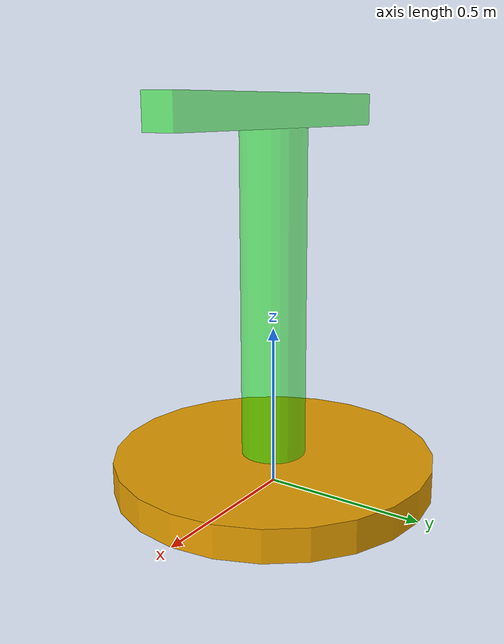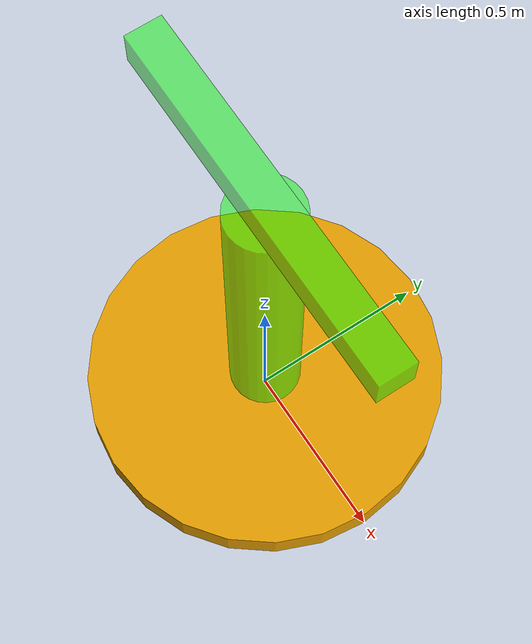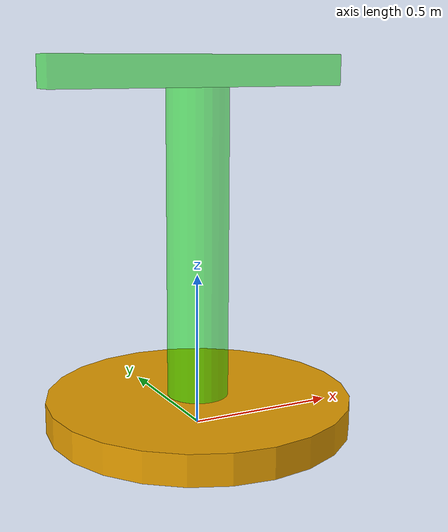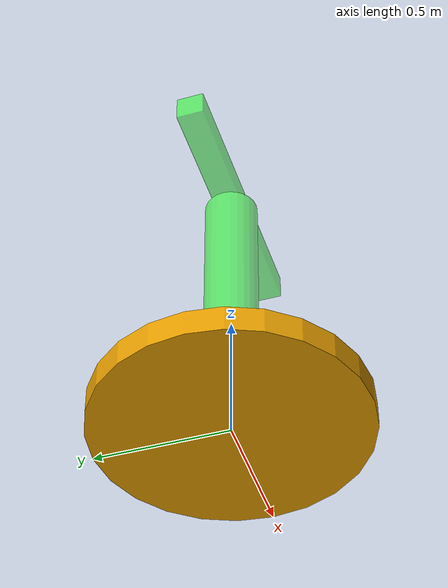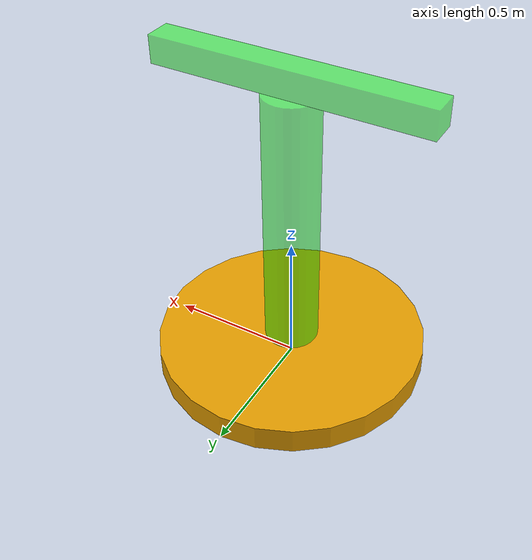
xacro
<?xml version="1.0"?>
<robot name="my_robot" xmlns:xacro="http://www.ros.org/wiki/xacro">
  <xacro:include filename="$(find lecxacro)/urdf/variables.xacro"/>
  <material name="green">
    <color rgba="0 1 0 0.5"/>
  </material>

  <link name="base">
    <visual>
      <geometry>
        <cylinder radius="${base_radius}"
                  length="${base_length}"/>
      </geometry>
      <origin rpy="0 0 0"
              xyz="0 0 ${base_length/2}"/>
    </visual>
  </link>

  <link name="link1">
    <visual>
      <geometry>
        <cylinder radius="${link1_radius}"
                  length="${link1_length}"/>
      </geometry>
      <origin rpy="0 0 0"
              xyz="0 0 ${link1_length/2}"/>
      <material name="green"/>
    </visual>
  </link>

  <link name="link2">
    <visual>
      <geometry>
        <box size="1 0.1 0.1"/>
      </geometry>
      <origin rpy="0 0 0"
              xyz="0 0 0.05"/>
      <material name="green"/>
    </visual>
  </link>

  <joint name="j1" type="revolute">
    <parent link="base"/>
    <child  link="link1"/>
    <origin xyz="0 0 ${base_length}"/>
    <axis   xyz="1 0 0"/>
    <limit  effort="10"
            velocity="1"
            lower="-1.57"
            upper="1.57"/>
  </joint>

  <joint name="j2" type="prismatic">
    <parent link="link1"/>
    <child  link="link2"/>
    <origin xyz="0 0 ${link1_length}"/>
    <axis   xyz="1 0 0"/>
    <limit  effort="10"
            velocity="1"
            lower="-0.5"
            upper="0.5"/>
  </joint>
</robot>

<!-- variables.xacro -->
<robot name="my_robot" xmlns:xacro="http://www.ros.org/wiki/xacro">
  <xacro:property name="base_length"  value="0.1"/>
  <xacro:property name="base_radius"  value="0.5"/>
  <xacro:property name="link1_length" value="1"/>
  <xacro:property name="link1_radius" value="0.1"/>
  <xacro:property name="link2_length" value="1"/>
  <xacro:property name="link2_radius" value="0.1"/>
</robot>
